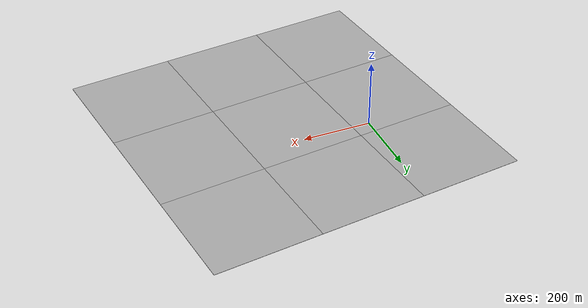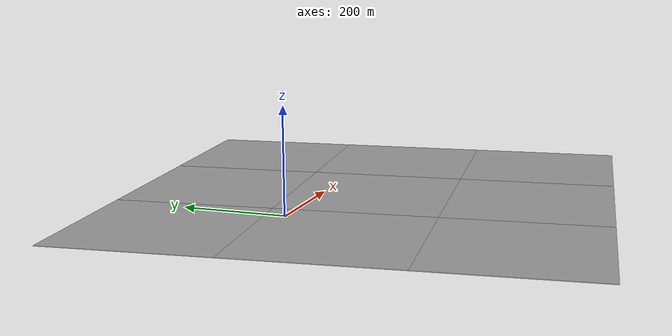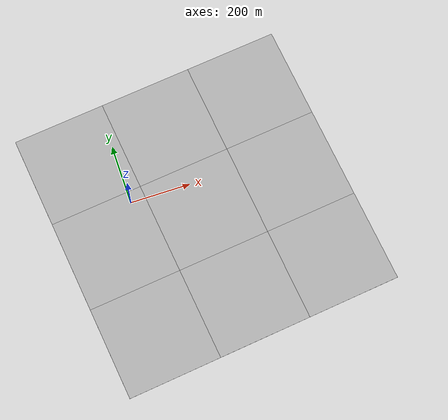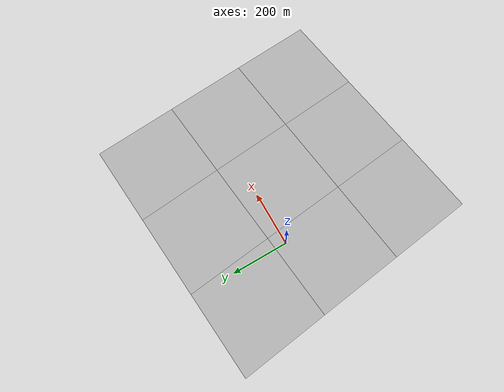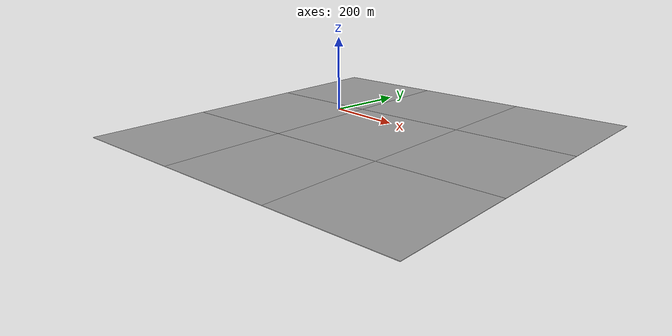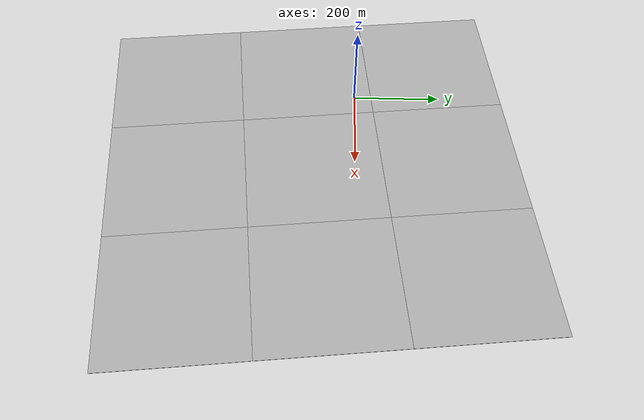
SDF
<sdf version="1.7">
 <world name="default">
  <light name="sun" type="directional">
   <pose>0 0 10 0 -0 0</pose>
   <diffuse>0.8 0.8 0.8 1</diffuse>
   <specular>0.2 0.2 0.2 1</specular>
   <attenuation>
    <range>1000</range>
    <constant>0.9</constant>
    <linear>0.01</linear>
    <quadratic>0.001</quadratic>
   </attenuation>
   <direction>-0.5 0.1 -0.9</direction>
   <spot><inner_angle>0</inner_angle><outer_angle>0</outer_angle><falloff>0</falloff></spot>
  </light>
  <model name="map_satellite_36.0831592_140.07968_700_700">
   <pose>216.619 -92.3418 0 0 0 -3.03035</pose>
   <static>1</static>
   <link name="link">
    <collision name="collision">
     <pose>0 0 -0.5 0 -0 0</pose>
     <geometry><box><size>926.604 926.604 1</size></box></geometry>
    </collision>
    <visual name="visual0_0">
     <pose>-308.868 308.868 -0.5 0 -0 1.5708</pose>
     <geometry><box><size>308.868 308.868 1</size></box></geometry>
     <material>
      <script>
       <uri>model://map_satellite_36.0831592_140.07968_700_700/materials/scripts</uri>
       <uri>model://map_satellite_36.0831592_140.07968_700_700/materials/textures</uri>
       <name>map_satellite_36.0831592_140.07968_700_700/0_0</name>
      </script>
     </material>
    </visual>
    <visual name="visual0_1">
     <pose>0 308.868 -0.5 0 -0 1.5708</pose>
     <geometry><box><size>308.868 308.868 1</size></box></geometry>
     <material>
      <script>
       <uri>model://map_satellite_36.0831592_140.07968_700_700/materials/scripts</uri>
       <uri>model://map_satellite_36.0831592_140.07968_700_700/materials/textures</uri>
       <name>map_satellite_36.0831592_140.07968_700_700/0_1</name>
      </script>
     </material>
    </visual>
    <visual name="visual0_2">
     <pose>308.868 308.868 -0.5 0 -0 1.5708</pose>
     <geometry><box><size>308.868 308.868 1</size></box></geometry>
     <material>
      <script>
       <uri>model://map_satellite_36.0831592_140.07968_700_700/materials/scripts</uri>
       <uri>model://map_satellite_36.0831592_140.07968_700_700/materials/textures</uri>
       <name>map_satellite_36.0831592_140.07968_700_700/0_2</name>
      </script>
     </material>
    </visual>
    <visual name="visual1_0">
     <pose>-308.868 0 -0.5 0 -0 1.5708</pose>
     <geometry><box><size>308.868 308.868 1</size></box></geometry>
     <material>
      <script>
       <uri>model://map_satellite_36.0831592_140.07968_700_700/materials/scripts</uri>
       <uri>model://map_satellite_36.0831592_140.07968_700_700/materials/textures</uri>
       <name>map_satellite_36.0831592_140.07968_700_700/1_0</name>
      </script>
     </material>
    </visual>
    <visual name="visual1_1">
     <pose>0 0 -0.5 0 -0 1.5708</pose>
     <geometry><box><size>308.868 308.868 1</size></box></geometry>
     <material>
      <script>
       <uri>model://map_satellite_36.0831592_140.07968_700_700/materials/scripts</uri>
       <uri>model://map_satellite_36.0831592_140.07968_700_700/materials/textures</uri>
       <name>map_satellite_36.0831592_140.07968_700_700/1_1</name>
      </script>
     </material>
    </visual>
    <visual name="visual1_2">
     <pose>308.868 0 -0.5 0 -0 1.5708</pose>
     <geometry><box><size>308.868 308.868 1</size></box></geometry>
     <material>
      <script>
       <uri>model://map_satellite_36.0831592_140.07968_700_700/materials/scripts</uri>
       <uri>model://map_satellite_36.0831592_140.07968_700_700/materials/textures</uri>
       <name>map_satellite_36.0831592_140.07968_700_700/1_2</name>
      </script>
     </material>
    </visual>
    <visual name="visual2_0">
     <pose>-308.868 -308.868 -0.5 0 -0 1.5708</pose>
     <geometry><box><size>308.868 308.868 1</size></box></geometry>
     <material>
      <script>
       <uri>model://map_satellite_36.0831592_140.07968_700_700/materials/scripts</uri>
       <uri>model://map_satellite_36.0831592_140.07968_700_700/materials/textures</uri>
       <name>map_satellite_36.0831592_140.07968_700_700/2_0</name>
      </script>
     </material>
    </visual>
    <visual name="visual2_1">
     <pose>0 -308.868 -0.5 0 -0 1.5708</pose>
     <geometry><box><size>308.868 308.868 1</size></box></geometry>
     <material>
      <script>
       <uri>model://map_satellite_36.0831592_140.07968_700_700/materials/scripts</uri>
       <uri>model://map_satellite_36.0831592_140.07968_700_700/materials/textures</uri>
       <name>map_satellite_36.0831592_140.07968_700_700/2_1</name>
      </script>
     </material>
    </visual>
    <visual name="visual2_2">
     <pose>308.868 -308.868 -0.5 0 -0 1.5708</pose>
     <geometry><box><size>308.868 308.868 1</size></box></geometry>
     <material>
      <script>
       <uri>model://map_satellite_36.0831592_140.07968_700_700/materials/scripts</uri>
       <uri>model://map_satellite_36.0831592_140.07968_700_700/materials/textures</uri>
       <name>map_satellite_36.0831592_140.07968_700_700/2_2</name>
      </script>
     </material>
    </visual>
   </link>
  </model>
  <gravity>0 0 -9.8</gravity>
  <magnetic_field>6e-06 2.3e-05 -4.2e-05</magnetic_field>
  <atmosphere type="adiabatic"/>
  <physics type="ode">
   <max_step_size>0.001</max_step_size>
   <real_time_factor>1</real_time_factor>
   <real_time_update_rate>1000</real_time_update_rate>
  </physics>
  <scene><ambient>0.4 0.4 0.4 1</ambient><background>0.7 0.7 0.7 1</background><shadows>1</shadows></scene>
  <spherical_coordinates>
   <surface_model>EARTH_WGS84</surface_model>
   <latitude_deg>0</latitude_deg>
   <longitude_deg>0</longitude_deg>
   <elevation>0</elevation>
   <heading_deg>0</heading_deg>
  </spherical_coordinates>
 </world>
</sdf>
